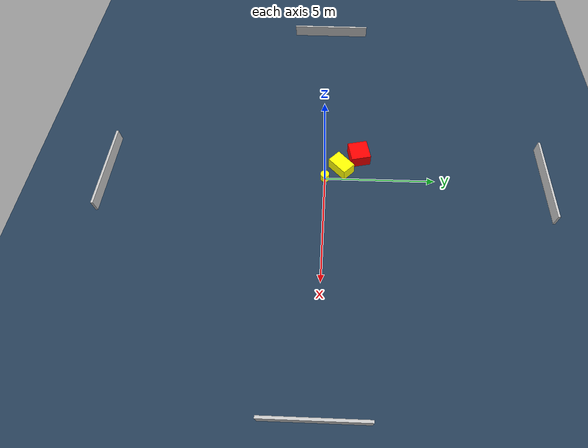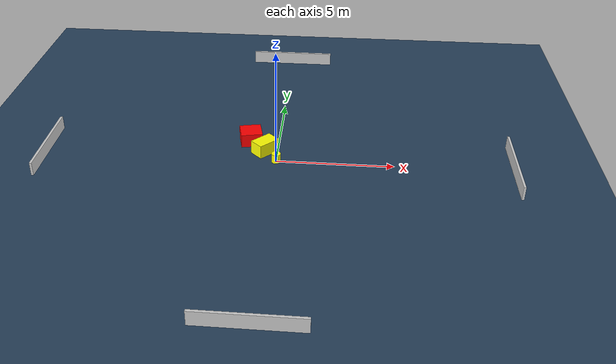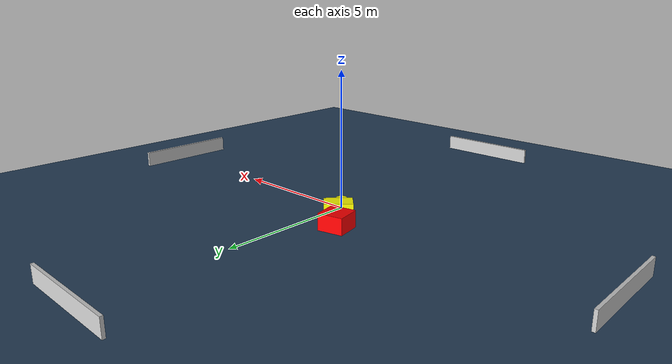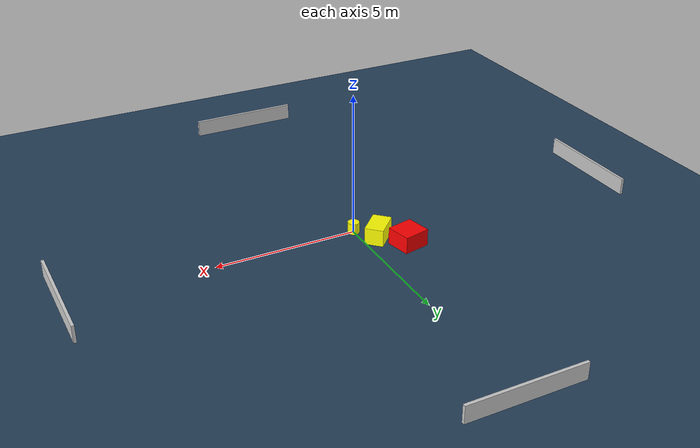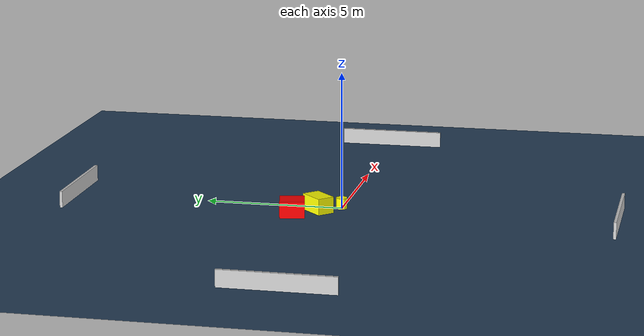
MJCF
<?xml version="1.0" ?>
<mujoco model="generated_environment">
  <option timestep="0.01" integrator="RK4" cone="elliptic"/>
  <default>
    <geom density="1"/>
  </default>
  <asset>
    <texture builtin="gradient" height="3072" name="skybox" rgb1="0.3 0.5 0.7" rgb2="0 0 0" type="skybox" width="512"/>
    <texture builtin="checker" height="300" name="groundplane" rgb1="0.2 0.3 0.4" rgb2="0.1 0.2 0.3" type="2d" width="300"/>
    <material name="groundplane" reflectance="0.2" texrepeat="5 5" texture="groundplane"/>
  </asset>
  <worldbody>
    <light dir="0 0 -1" directional="true" pos="0 0 1.5"/>
    <geom condim="3" friction="0.5 0.005 0.001" material="groundplane" name="floor" pos="0 0 0" size="0 0 0.05" type="plane"/>
    <body name="walls">
      <geom name="wall_1" condim="4" pos="-10.0 0.0 0.3" rgba="0.800000011920929 0.800000011920929 0.800000011920929 1.0" size="0.05 2.0 0.3" type="box"/>
      <geom name="wall_2" condim="4" pos="10.0 0.0 0.3" rgba="0.800000011920929 0.800000011920929 0.800000011920929 1.0" size="0.05 2.0 0.3" type="box"/>
      <geom name="wall_3" condim="4" pos="0.0 -10.0 0.3" rgba="0.800000011920929 0.800000011920929 0.800000011920929 1.0" size="2.0 0.05 0.3" type="box"/>
      <geom name="wall_4" condim="4" pos="0.0 10.0 0.3" rgba="0.800000011920929 0.800000011920929 0.800000011920929 1.0" size="2.0 0.05 0.3" type="box"/>
    </body>
    <body name="robot">
      <joint name="joint_x" type="slide" pos="0 0 0" axis="1 0 0"/>
      <joint name="joint_y" type="slide" pos="0 0 0" axis="0 1 0"/>
      <geom name="robot" type="cylinder" pos="0.0 0.0 0.2" size="0.2 0.2 0.0" mass="5.0" friction="1.0 0.005 0.0001" condim="4" rgba="1.0 1.0 0.0 1.0"/>
    </body>
    <body name="obstacle_1_movable">
      <geom name="obstacle_1_movable" condim="4" pos="-0.5497319081627425 0.742029039957905 0.3" euler="0 0 135.29197601361315" friction="0.0 0.005 0.001" rgba="1.0 1.0 0.0 1.0" size="0.32523254226582654 0.5076451191269051 0.3" type="box" mass="0.1"/>
      <joint type="free"/>
    </body>
    <body name="obstacle_2_static">
      <geom name="obstacle_2_static" condim="4" pos="-1.2525932485370463 1.552984478291761 0.3" euler="0 0 282.3083548535151" friction="0.0 0.005 0.001" rgba="1.0 0.0 0.0 1.0" size="0.4485932300420471 0.4679818925681467 0.3" type="box"/>
    </body>
  </worldbody>
  <actuator>
    <motor name="actuator_x" joint="joint_x" gear="1" ctrlrange="-1 1"/>
    <motor name="actuator_y" joint="joint_y" gear="1" ctrlrange="-1 1"/>
  </actuator>
</mujoco>
